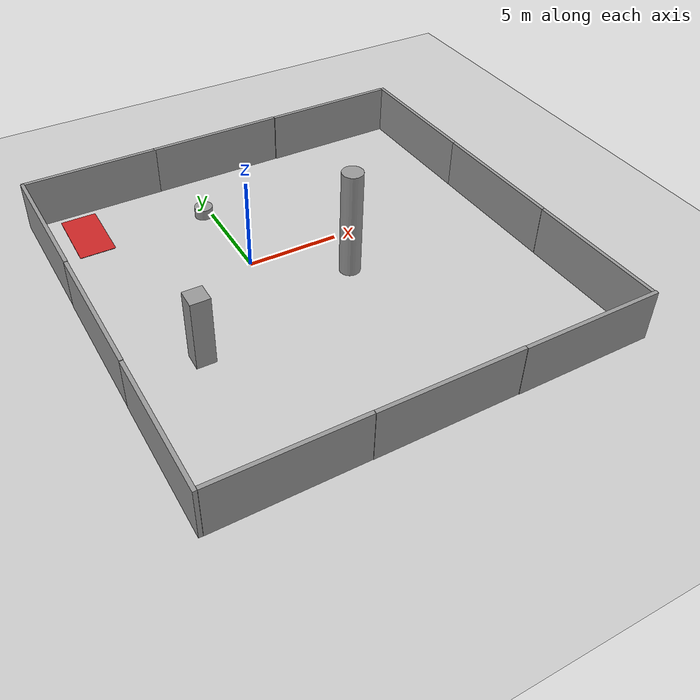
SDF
<sdf version="1.7">
 <world name="default">
  <light name="sun" type="directional">
   <pose>0 0 10 0 -0 0</pose>
   <diffuse>0.8 0.8 0.8 1</diffuse>
   <specular>0.2 0.2 0.2 1</specular>
   <attenuation>
    <range>1000</range>
    <constant>0.9</constant>
    <linear>0.01</linear>
    <quadratic>0.001</quadratic>
   </attenuation>
   <direction>-0.5 0.1 -0.9</direction>
   <spot><inner_angle>0</inner_angle><outer_angle>0</outer_angle><falloff>0</falloff></spot>
  </light>
  <model name="ground_plane">
   <static>1</static>
   <link name="link">
    <collision name="collision">
     <geometry><plane><normal>0 0 1</normal><size>100 100</size></plane></geometry>
     <surface>
      <contact><collide_bitmask>65535</collide_bitmask></contact>
      <friction><ode><mu>100</mu><mu2>50</mu2></ode></friction>
     </surface>
    </collision>
    <visual name="visual">
     <cast_shadows>0</cast_shadows>
     <geometry><plane><normal>0 0 1</normal><size>100 100</size></plane></geometry>
     <material>
      <script><uri>file://media/materials/scripts/gazebo.material</uri><name>Gazebo/Grey</name></script>
     </material>
    </visual>
   </link>
  </model>
  <gravity>0 0 -9.8</gravity>
  <magnetic_field>6e-06 2.3e-05 -4.2e-05</magnetic_field>
  <atmosphere type="adiabatic"/>
  <physics type="ode">
   <max_step_size>0.001</max_step_size>
   <real_time_factor>1</real_time_factor>
   <real_time_update_rate>1000</real_time_update_rate>
  </physics>
  <scene><ambient>0.4 0.4 0.4 1</ambient><background>0.7 0.7 0.7 1</background><shadows>1</shadows></scene>
  <spherical_coordinates>
   <surface_model>EARTH_WGS84</surface_model>
   <latitude_deg>0</latitude_deg>
   <longitude_deg>0</longitude_deg>
   <elevation>0</elevation>
   <heading_deg>0</heading_deg>
  </spherical_coordinates>
  <model name="grey_wall">
   <static>1</static>
   <link name="link">
    <pose>0 0 1.4 0 -0 0</pose>
    <collision name="collision"><geometry><box><size>7.5 0.2 2.8</size></box></geometry></collision>
    <visual name="visual">
     <cast_shadows>0</cast_shadows>
     <geometry><box><size>7.5 0.2 2.8</size></box></geometry>
     <material>
      <script>
       <uri>model://grey_wall/materials/scripts</uri>
       <uri>model://grey_wall/materials/textures</uri>
       <name>vrc/grey_wall</name>
      </script>
     </material>
    </visual>
   </link>
   <pose>-5.4016 8.67061 -0.001263 0 -0 0</pose>
  </model>
  <model name="grey_wall_1">
   <static>1</static>
   <link name="link">
    <pose>0 0 1.4 0 -0 0</pose>
    <collision name="collision"><geometry><box><size>7.5 0.2 2.8</size></box></geometry></collision>
    <visual name="visual">
     <cast_shadows>0</cast_shadows>
     <geometry><box><size>7.5 0.2 2.8</size></box></geometry>
     <material>
      <script>
       <uri>model://grey_wall/materials/scripts</uri>
       <uri>model://grey_wall/materials/textures</uri>
       <name>vrc/grey_wall</name>
      </script>
     </material>
    </visual>
   </link>
   <pose>-9.02477 4.94981 0 0 0 -1.55</pose>
  </model>
  <model name="grey_wall_1_clone">
   <static>1</static>
   <link name="link">
    <pose>0 0 1.4 0 -0 0</pose>
    <collision name="collision"><geometry><box><size>7.5 0.2 2.8</size></box></geometry></collision>
    <visual name="visual">
     <cast_shadows>0</cast_shadows>
     <geometry><box><size>7.5 0.2 2.8</size></box></geometry>
     <material>
      <script>
       <uri>model://grey_wall/materials/scripts</uri>
       <uri>model://grey_wall/materials/textures</uri>
       <name>vrc/grey_wall</name>
      </script>
     </material>
    </visual>
   </link>
   <pose>-8.88636 -2.56773 0 0 0 -1.55</pose>
  </model>
  <model name="grey_wall_1_clone_clone">
   <static>1</static>
   <link name="link">
    <pose>0 0 1.4 0 -0 0</pose>
    <collision name="collision"><geometry><box><size>7.5 0.2 2.8</size></box></geometry></collision>
    <visual name="visual">
     <cast_shadows>0</cast_shadows>
     <geometry><box><size>7.5 0.2 2.8</size></box></geometry>
     <material>
      <script>
       <uri>model://grey_wall/materials/scripts</uri>
       <uri>model://grey_wall/materials/textures</uri>
       <name>vrc/grey_wall</name>
      </script>
     </material>
    </visual>
   </link>
   <pose>-8.74116 -10.1056 0 0 0 -1.55</pose>
  </model>
  <model name="unit_box">
   <pose>-6.66285 6.46222 0.015259 -0 -1.5e-05 0.000632</pose>
   <link name="link">
    <inertial>
     <mass>1</mass>
     <inertia>
      <ixx>0.166667</ixx>
      <ixy>0</ixy>
      <ixz>0</ixz>
      <iyy>0.166667</iyy>
      <iyz>0</iyz>
      <izz>0.166667</izz>
     </inertia>
    </inertial>
    <collision name="collision"><geometry><box><size>1.92629 3.55861 0.030547</size></box></geometry></collision>
    <visual name="visual">
     <geometry><box><size>1.92629 3.55861 0.030547</size></box></geometry>
     <material>
      <script><name>Gazebo/Red</name><uri>file://media/materials/scripts/gazebo.material</uri></script>
     </material>
    </visual>
   </link>
  </model>
  <model name="obstacle_2">
   <pose>4.3321 -2.80215 2.97341 0 -0 0.005448</pose>
   <link name="link">
    <inertial>
     <mass>1</mass>
     <inertia><ixx>0.145833</ixx><ixy>0</ixy><ixz>0</ixz><iyy>0.145833</iyy><iyz>0</iyz><izz>0.125</izz></inertia>
    </inertial>
    <collision name="collision">
     <geometry><cylinder><radius>0.55881</radius><length>5.94683</length></cylinder></geometry>
    </collision>
    <visual name="visual">
     <geometry><cylinder><radius>0.55881</radius><length>5.94683</length></cylinder></geometry>
     <material>
      <script><name>Gazebo/Grey</name><uri>file://media/materials/scripts/gazebo.material</uri></script>
     </material>
    </visual>
   </link>
  </model>
  <model name="obstacle_1">
   <pose>-4.88797 -5.17267 1.9222 -1e-06 -0 -0.006487</pose>
   <link name="link">
    <inertial>
     <mass>1</mass>
     <inertia>
      <ixx>0.166667</ixx>
      <ixy>0</ixy>
      <ixz>0</ixz>
      <iyy>0.166667</iyy>
      <iyz>0</iyz>
      <izz>0.166667</izz>
     </inertia>
    </inertial>
    <collision name="collision"><geometry><box><size>1 1 3.84441</size></box></geometry></collision>
    <visual name="visual">
     <geometry><box><size>1 1 3.84441</size></box></geometry>
     <material>
      <script><name>Gazebo/Grey</name><uri>file://media/materials/scripts/gazebo.material</uri></script>
     </material>
    </visual>
   </link>
  </model>
  <model name="obstacle_3">
   <pose>-0.388494 5.21201 0.296654 -0 -0 -0.002555</pose>
   <link name="link">
    <inertial>
     <mass>1</mass>
     <inertia><ixx>0.145833</ixx><ixy>0</ixy><ixz>0</ixz><iyy>0.145833</iyy><iyz>0</iyz><izz>0.125</izz></inertia>
    </inertial>
    <collision name="collision">
     <geometry><cylinder><radius>0.5</radius><length>0.593328</length></cylinder></geometry>
    </collision>
    <visual name="visual">
     <geometry><cylinder><radius>0.5</radius><length>0.593328</length></cylinder></geometry>
     <material>
      <script><name>Gazebo/Grey</name><uri>file://media/materials/scripts/gazebo.material</uri></script>
     </material>
    </visual>
   </link>
  </model>
  <model name="grey_wall_clone">
   <static>1</static>
   <link name="link">
    <pose>0 0 1.4 0 -0 0</pose>
    <collision name="collision"><geometry><box><size>7.5 0.2 2.8</size></box></geometry></collision>
    <visual name="visual">
     <cast_shadows>0</cast_shadows>
     <geometry><box><size>7.5 0.2 2.8</size></box></geometry>
     <material>
      <script>
       <uri>model://grey_wall/materials/scripts</uri>
       <uri>model://grey_wall/materials/textures</uri>
       <name>vrc/grey_wall</name>
      </script>
     </material>
    </visual>
   </link>
   <pose>2.0275 8.67259 0 0 -0 0</pose>
  </model>
  <model name="grey_wall_clone_clone">
   <static>1</static>
   <link name="link">
    <pose>0 0 1.4 0 -0 0</pose>
    <collision name="collision"><geometry><box><size>7.5 0.2 2.8</size></box></geometry></collision>
    <visual name="visual">
     <cast_shadows>0</cast_shadows>
     <geometry><box><size>7.5 0.2 2.8</size></box></geometry>
     <material>
      <script>
       <uri>model://grey_wall/materials/scripts</uri>
       <uri>model://grey_wall/materials/textures</uri>
       <name>vrc/grey_wall</name>
      </script>
     </material>
    </visual>
   </link>
   <pose>-4.80844 -13.7617 0 0 -0 0</pose>
  </model>
  <model name="grey_wall_clone_clone_clone">
   <static>1</static>
   <link name="link">
    <pose>0 0 1.4 0 -0 0</pose>
    <collision name="collision"><geometry><box><size>7.5 0.2 2.8</size></box></geometry></collision>
    <visual name="visual">
     <cast_shadows>0</cast_shadows>
     <geometry><box><size>7.5 0.2 2.8</size></box></geometry>
     <material>
      <script>
       <uri>model://grey_wall/materials/scripts</uri>
       <uri>model://grey_wall/materials/textures</uri>
       <name>vrc/grey_wall</name>
      </script>
     </material>
    </visual>
   </link>
   <pose>2.69902 -13.7746 0 0 -0 0</pose>
  </model>
  <model name="grey_wall_clone_clone_clone_clone">
   <static>1</static>
   <link name="link">
    <pose>0 0 1.4 0 -0 0</pose>
    <collision name="collision"><geometry><box><size>7.5 0.2 2.8</size></box></geometry></collision>
    <visual name="visual">
     <cast_shadows>0</cast_shadows>
     <geometry><box><size>7.5 0.2 2.8</size></box></geometry>
     <material>
      <script>
       <uri>model://grey_wall/materials/scripts</uri>
       <uri>model://grey_wall/materials/textures</uri>
       <name>vrc/grey_wall</name>
      </script>
     </material>
    </visual>
   </link>
   <pose>10.1916 -13.797 0 0 -0 0</pose>
  </model>
  <model name="grey_wall_1_clone_clone_clone">
   <static>1</static>
   <link name="link">
    <pose>0 0 1.4 0 -0 0</pose>
    <collision name="collision"><geometry><box><size>7.5 0.2 2.8</size></box></geometry></collision>
    <visual name="visual">
     <cast_shadows>0</cast_shadows>
     <geometry><box><size>7.5 0.2 2.8</size></box></geometry>
     <material>
      <script>
       <uri>model://grey_wall/materials/scripts</uri>
       <uri>model://grey_wall/materials/textures</uri>
       <name>vrc/grey_wall</name>
      </script>
     </material>
    </visual>
   </link>
   <pose>13.7305 -10.0418 0 0 0 -1.55</pose>
  </model>
  <model name="grey_wall_1_clone_clone_clone_clone">
   <static>1</static>
   <link name="link">
    <pose>0 0 1.4 0 -0 0</pose>
    <collision name="collision"><geometry><box><size>7.5 0.2 2.8</size></box></geometry></collision>
    <visual name="visual">
     <cast_shadows>0</cast_shadows>
     <geometry><box><size>7.5 0.2 2.8</size></box></geometry>
     <material>
      <script>
       <uri>model://grey_wall/materials/scripts</uri>
       <uri>model://grey_wall/materials/textures</uri>
       <name>vrc/grey_wall</name>
      </script>
     </material>
    </visual>
   </link>
   <pose>13.5766 -2.52864 0 0 0 -1.55</pose>
  </model>
  <model name="grey_wall_1_clone_clone_clone_clone_clone">
   <static>1</static>
   <link name="link">
    <pose>0 0 1.4 0 -0 0</pose>
    <collision name="collision"><geometry><box><size>7.5 0.2 2.8</size></box></geometry></collision>
    <visual name="visual">
     <cast_shadows>0</cast_shadows>
     <geometry><box><size>7.5 0.2 2.8</size></box></geometry>
     <material>
      <script>
       <uri>model://grey_wall/materials/scripts</uri>
       <uri>model://grey_wall/materials/textures</uri>
       <name>vrc/grey_wall</name>
      </script>
     </material>
    </visual>
   </link>
   <pose>13.4223 4.95869 0 0 0 -1.55</pose>
  </model>
  <model name="grey_wall_clone_clone_0">
   <static>1</static>
   <link name="link">
    <pose>0 0 1.4 0 -0 0</pose>
    <collision name="collision"><geometry><box><size>7.5 0.2 2.8</size></box></geometry></collision>
    <visual name="visual">
     <cast_shadows>0</cast_shadows>
     <geometry><box><size>7.5 0.2 2.8</size></box></geometry>
     <material>
      <script>
       <uri>model://grey_wall/materials/scripts</uri>
       <uri>model://grey_wall/materials/textures</uri>
       <name>vrc/grey_wall</name>
      </script>
     </material>
    </visual>
   </link>
   <pose>9.54405 8.64128 0 0 -0 0</pose>
  </model>
 </world>
</sdf>
